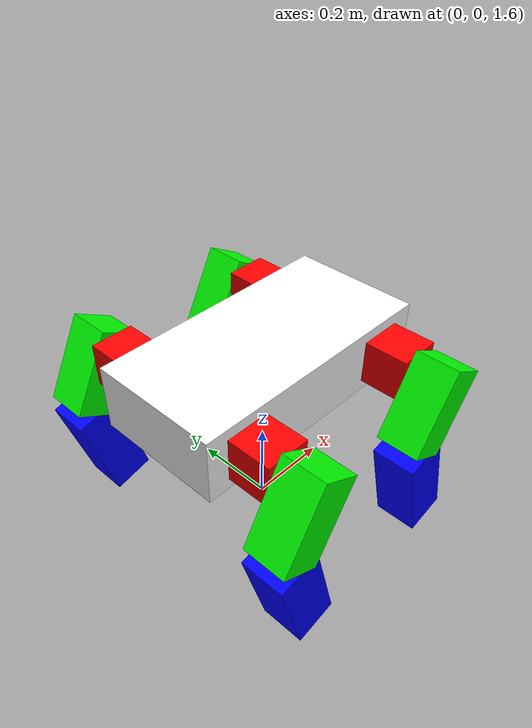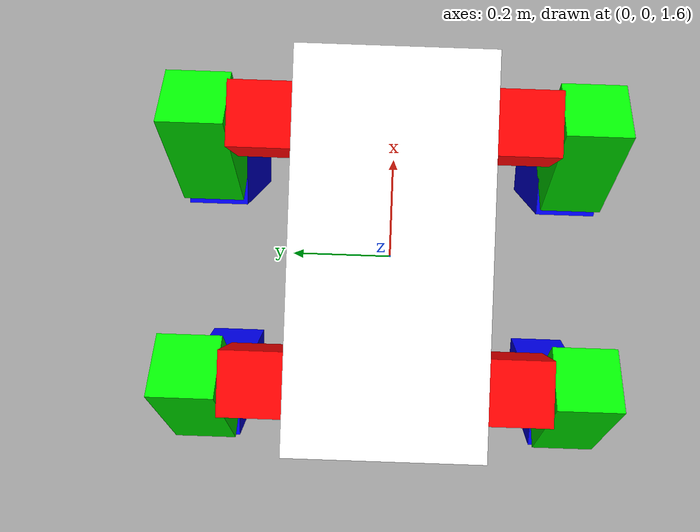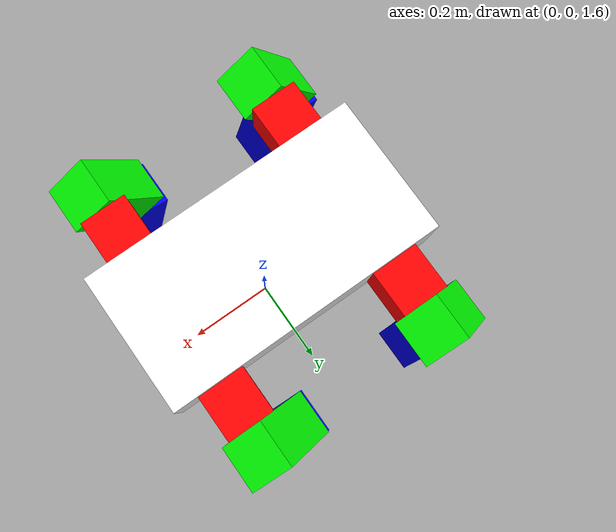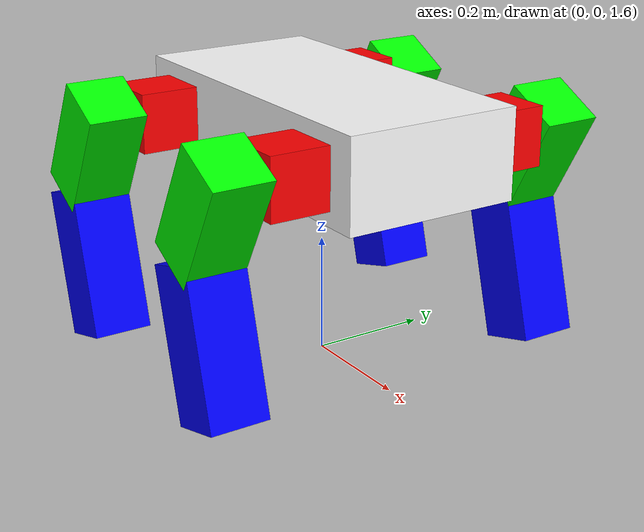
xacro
<?xml version="0.1"?>
<robot xmlns:xacro="http://www.ros.org/wiki/xacro" name="Quadruped">

    <xacro:include filename="$(find robot_urdf)/quadruped_description.urdf.xacro" />
    <xacro:include filename="$(find robot_urdf)/quadruped_simulation.urdf.xacro" />

    <xacro:leg prefix="bl" side="1" front="-1"/>
    <xacro:leg prefix="br" side="-1" front="-1"/>
    <xacro:leg prefix="fl" side="1" front="1"/>
    <xacro:leg prefix="fr" side="-1" front="1"/>
    <xacro:body/>
    <xacro:quadruped_ros2_control/>

</robot>

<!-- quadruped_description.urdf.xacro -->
<robot xmlns:xacro="http://www.ros.org/wiki/xacro" name="Unknown bot">

<material name="red">
    <color rgba="1 0 0 1" />
</material>

<material name="blue">
  <color rgba="0 0 1 1" />
</material>

<material name="green">
  <color rgba="0 1 0 1" />
</material>

<xacro:property name="inertiaTest" value="0.1" />
<xacro:property name="bodyLen" value="0.6" />
<xacro:property name="bodyWidth" value="0.3" />
<xacro:property name="bodyHeight" value="0.15" />

<xacro:macro name="body">
    <link name="world"/>
    <joint name="fixed" type="fixed">
        <origin xyz="0 0 2" rpy="0 0 0"/>
        <parent link="world"/>
        <child link="base_link"/>
    </joint>

    <link name="base_link">
      <inertial>
        <origin xyz="0 0 0" rpy="0 0 0"/>
        <mass value="1"/>
        <inertia ixx="${inertiaTest}" ixy="0" ixz="0" iyy="${inertiaTest}" iyz = "0" izz="${inertiaTest}" />
      </inertial>

      <visual>
        <origin xyz="0 0 0" rpy="0 0 0" />
        <geometry>
          <box size="${bodyLen} ${bodyWidth} ${bodyHeight}"/>
        </geometry>
        <material name="white">
          <color rgba="1 1 1 1" />
        </material>
      </visual>

      <collision>
        <origin xyz="0 0 0" rpy="0 0 0" />
        <geometry>
          <box size="${bodyLen} ${bodyWidth} ${bodyHeight}"/>
        </geometry>
      </collision>

  </link>
</xacro:macro>

<xacro:macro name="leg" params="prefix side front">
  <link name="shoulder_${prefix}_link">
    <inertial>
      <origin xyz="0 0 0" rpy="0 0 0"/>
      <mass value="0.1"/>
      <inertia ixx="${inertiaTest}" ixy="0" ixz="0" iyy="${inertiaTest}" iyz = "0" izz="${inertiaTest}" />
    </inertial>

    <visual>
      <origin xyz="0 ${side*0.05} 0" rpy="0 0 0" />
      <geometry>
        <box size="0.1 0.1 0.1" />
      </geometry>
      <material name="red"/>
    </visual>

    <collision>
      <origin xyz="0 ${side*0.05} 0" rpy="0 0 0" />
      <geometry>
        <box size="0.1 0.1 0.1" />
      </geometry>
    </collision>
  </link>

  <joint name="baseToShoulder_${prefix}_joint" type="revolute">
    <origin xyz="${front*0.2} ${side*bodyWidth/2} 0" />
    <parent link="base_link" />
    <child link="shoulder_${prefix}_link" />
    <axis xyz="1 0 0" />
    <limit upper="${pi/4}" lower="${-pi/4}" effort="10" velocity="10"/>
  </joint>

  <link name="thigh_${prefix}_link">
    <inertial>
      <origin xyz="0 0 0" rpy="0 0 0"/>
      <mass value="0.15"/>
      <inertia ixx="${inertiaTest}" ixy="0" ixz="0" iyy="${inertiaTest}" iyz = "0" izz="${inertiaTest}" />
    </inertial>

    <visual>
      <origin xyz="0 ${side*0.05} -0.05" rpy="0 0 0" />
      <geometry>
        <box size="0.1 0.1 0.2" />
      </geometry>
      <material name="green"/>
    </visual>

    <collision>
      <origin xyz="0 ${side*0.05} -0.05" rpy="0 0 0" />
      <geometry>
        <box size="0.1 0.1 0.2" />
      </geometry>
    </collision>
  </link>

  <joint name="shoulderToThigh_${prefix}_joint" type="revolute">
    <origin xyz="0 ${side*0.1} 0" rpy = "0 0.5 0" />
    <parent link="shoulder_${prefix}_link" />
    <child link="thigh_${prefix}_link" />
    <axis xyz="0 1 0" />
    <limit upper="3.14" lower="-3.14" effort="10" velocity="10"/>
  </joint>

  <link name="tibia_${prefix}_link">
    <inertial>
      <origin xyz="0 0 0" rpy="0 0 0"/>
      <mass value="0.15"/>
      <inertia ixx="${inertiaTest}" ixy="0" ixz="0" iyy="${inertiaTest}" iyz = "0" izz="${inertiaTest}" />
    </inertial>

    <visual>
      <origin xyz ="0 0 -0.125" rpy="0 0 0" />
      <geometry>
        <box size="0.1 0.1 0.25" />
      </geometry>
      <material name="blue"/>
    </visual>

    <collision>
      <origin xyz ="0 0 -0.125" rpy="0 0 0" />
      <geometry>
        <box size="0.1 0.1 0.25" />
      </geometry>
    </collision>
  </link>

  <joint name="thighToTibia_${prefix}_joint" type="revolute">
    <origin xyz ="0 ${side*0.05} -0.15" rpy="0 -0.77 0" />
    <parent link="thigh_${prefix}_link" />
    <child link="tibia_${prefix}_link" />
    <axis xyz="0 1 0" />
    <limit upper="3.14" lower="-3.14" effort="10" velocity="10"/>
  </joint>
</xacro:macro>

</robot>
